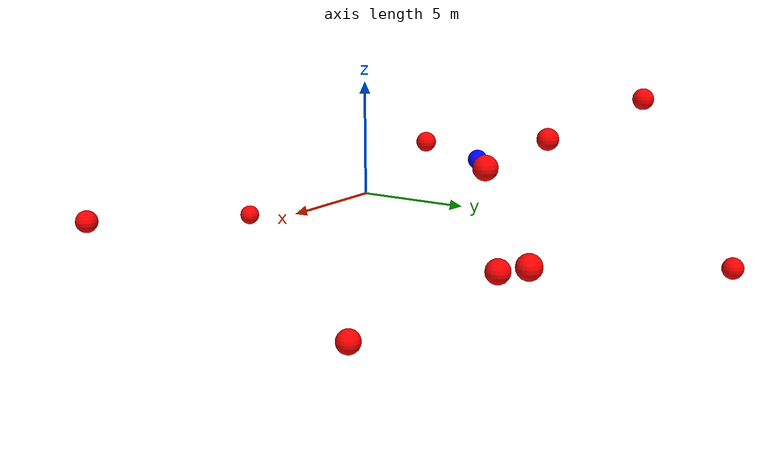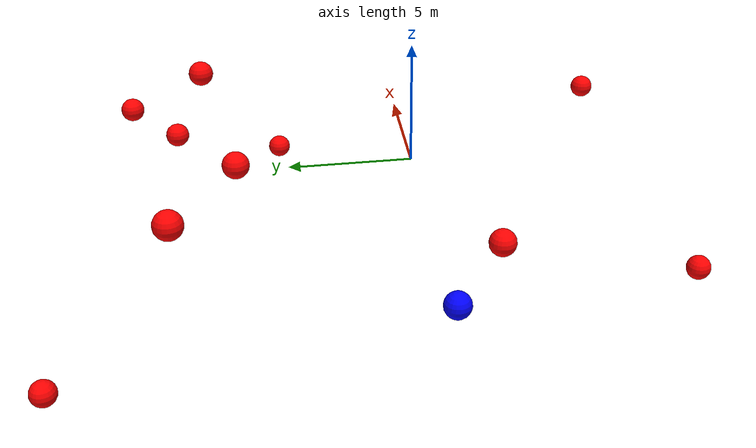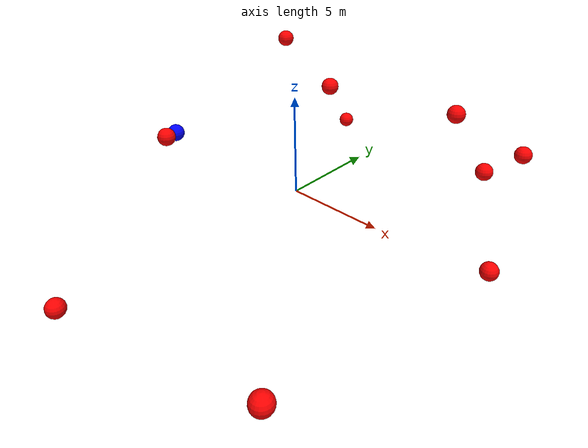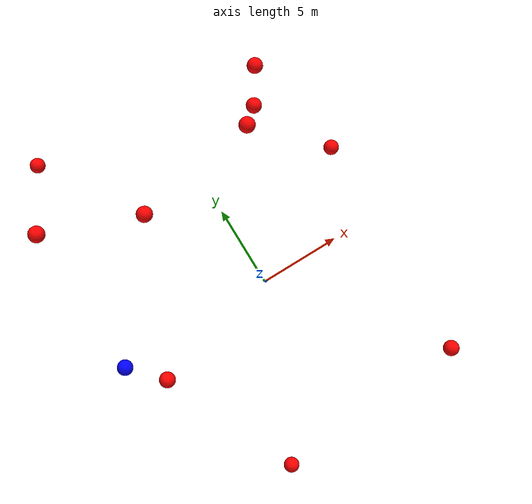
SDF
<?xml version="1.0" ?>
<sdf version="1.8">
    <world name="3d_world">
        <physics name="1ms" type="ode">
            <max_step_size>0.001</max_step_size>
            <real_time_factor>1.0</real_time_factor>
            <real_time_update_rate>1000.0</real_time_update_rate>
        </physics>
        <gravity>0 0 0</gravity>

        <plugin
            filename="gz-sim-physics-system"
            name="gz::sim::v8::systems::Physics">
        </plugin>
        <plugin
            filename="libignition-gazebo-user-commands-system.so"
            name="ignition::gazebo::systems::UserCommands">
        </plugin>
        <plugin
            filename="gz-sim-scene-broadcaster-system"
            name="gz::sim::systems::SceneBroadcaster">
        </plugin>
        <plugin
            filename="gz-sim-sensors-system"
            name="gz::sim::systems::Sensors">
            <render_engine>ogre2</render_engine>
        </plugin>

        <light type="directional" name="sun">
            <cast_shadows>true</cast_shadows>
            <pose>0 0 10 0 0 0</pose>
            <diffuse>0.8 0.8 0.8 1</diffuse>
            <specular>0.2 0.2 0.2 1</specular>
            <attenuation>
                <range>1000</range>
                <constant>0.9</constant>
                <linear>0.01</linear>
                <quadratic>0.001</quadratic>
            </attenuation>
            <direction>-0.5 0.1 -0.9</direction>
        </light>

        <!-- AGENTE -->
        <model name='agente' canonical_link='chassis'>
            <pose relative_to='world'>-10.0 0 0.0 0 0 0</pose>
            <link name='chassis'>
                <pose relative_to='__model__'>0.0 0 0.0 0 0 0</pose>
                <inertial>
                    <mass>1.14395</mass>
                    <inertia>
                        <ixx>0.095329</ixx>
                        <ixy>0</ixy>
                        <ixz>0</ixz>
                        <iyy>0.381317</iyy>
                        <iyz>0</iyz>
                        <izz>0.476646</izz>
                    </inertia>
                </inertial>
                <visual name='visual'>
                    <geometry>
                        <sphere>
                            <radius>0.5</radius>
                        </sphere>
                    </geometry>
                    <material>
                        <ambient>0.0 0.0 1.0 1</ambient>
                        <diffuse>0.0 0.0 1.0 1</diffuse>
                        <specular>0.0 0.0 1.0 1</specular>
                    </material>
                </visual>
                <collision name='collision'>
                    <geometry>
                        <sphere>
                            <radius>0.5</radius>
                        </sphere>
                    </geometry>
                </collision>
                <enable_gravity>false</enable_gravity>
            </link>

            <link name='lidar_link'>
                <pose relative_to='chassis'>0.0 0 0.1 0 0 0</pose>
                <inertial>
                    <mass>0.1</mass>
                    <inertia>
                        <ixx>0.000166667</ixx>
                        <iyy>0.000166667</iyy>
                        <izz>0.000166667</izz>
                    </inertia>
                </inertial>
                <collision name='collision'>
                    <geometry>
                        <cylinder>
                            <radius>0.05</radius>
                            <length>0.1</length>
                        </cylinder>
                    </geometry>
                </collision>
                <visual name='visual'>
                    <geometry>
                        <cylinder>
                            <radius>0.05</radius>
                            <length>0.1</length>
                        </cylinder>
                    </geometry>
                    <material>
                        <ambient>0.0 1.0 0.0 1</ambient>
                        <diffuse>0.0 1.0 0.0 1</diffuse>
                        <specular>0.0 1.0 0.0 1</specular>
                    </material>
                </visual>
                <sensor name="lidar" type="gpu_lidar">
                    <topic>scan</topic>
                    <update_rate>10</update_rate>
                    <lidar>
                        <scan>
                            <horizontal>
                                <samples>5000</samples>
                                <resolution>1</resolution>
                                <min_angle>-3.14159</min_angle>
                                <max_angle>3.14159</max_angle>
                            </horizontal>
                        </scan>
                        <range>
                            <min>0.1</min>
                            <max>10.0</max>
                            <resolution>0.01</resolution>
                        </range>
                    </lidar>
                    <visualize>true</visualize>
                    <always_on>true</always_on>
                    <update_rate>10</update_rate>
                    <pose_frame>lidar</pose_frame>
                </sensor>
                <enable_gravity>false</enable_gravity>
            </link>

            <joint name="lidar_joint" type="fixed">
                <parent>chassis</parent>
                <child>lidar_link</child>
            </joint>

            <plugin
                filename="ignition-gazebo-joint-state-publisher-system"
                name="ignition::gazebo::systems::JointStatePublisher">
            </plugin>
            <plugin
                filename="ignition-gazebo-odometry-publisher-system"
                name="ignition::gazebo::systems::OdometryPublisher">
                <dimensions>3</dimensions>
            </plugin>
            <plugin
                filename="ignition-gazebo-velocity-control-system"
                name="ignition::gazebo::systems::VelocityControl">
                <initial_linear>0.0 0 0</initial_linear>
                <initial_angular>0 0 0.0</initial_angular>
            </plugin>
            <plugin
                filename="libignition-gazebo-pose-publisher-system.so"
                name="ignition::gazebo::systems::PosePublisher">
                <topic>/agente/pose</topic>
                <frame_id>agente</frame_id>
                <update_rate>30</update_rate>
            </plugin>
        </model>

        <!-- OBSTACLE 1 -->
        <model name='obstacle_1' canonical_link='obstacle'>
            <static>false</static>
            <pose relative_to='world'>6.45 11.61 -0.14 0 0 0</pose>
            <link name='obstacle'>
                <pose relative_to='__model__'>0.0 0 0.0 0 0 0</pose>
                <visual name='visual'>
                    <geometry>
                        <sphere>
                            <radius>0.50</radius>
                        </sphere>
                    </geometry>
                    <material>
                        <ambient>1.0 0.0 0.0 1</ambient>
                        <diffuse>1.0 0.0 0.0 1</diffuse>
                        <specular>1.0 0.0 0.0 1</specular>
                    </material>
                </visual>
                <collision name='collision'>
                    <geometry>
                        <sphere>
                            <radius>0.50</radius>
                        </sphere>
                    </geometry>
                </collision>
                <enable_gravity>false</enable_gravity>
            </link>

            <plugin
                filename="ignition-gazebo-velocity-control-system"
                name="ignition::gazebo::systems::VelocityControl">
                <initial_linear>-1.21 -1.59 0.02</initial_linear>
                <initial_angular>0 0 0</initial_angular>
            </plugin>

            <plugin
                filename="ignition-gazebo-odometry-publisher-system"
                name="ignition::gazebo::systems::OdometryPublisher">
                <dimensions>3</dimensions>
            </plugin>
        </model>

        <!-- OBSTACLE 2 -->
        <model name='obstacle_2' canonical_link='obstacle'>
            <static>false</static>
            <pose relative_to='world'>7.71 -9.61 -1.03 0 0 0</pose>
            <link name='obstacle'>
                <pose relative_to='__model__'>0.0 0 0.0 0 0 0</pose>
                <visual name='visual'>
                    <geometry>
                        <sphere>
                            <radius>0.50</radius>
                        </sphere>
                    </geometry>
                    <material>
                        <ambient>1.0 0.0 0.0 1</ambient>
                        <diffuse>1.0 0.0 0.0 1</diffuse>
                        <specular>1.0 0.0 0.0 1</specular>
                    </material>
                </visual>
                <collision name='collision'>
                    <geometry>
                        <sphere>
                            <radius>0.50</radius>
                        </sphere>
                    </geometry>
                </collision>
                <enable_gravity>false</enable_gravity>
            </link>

            <plugin
                filename="ignition-gazebo-velocity-control-system"
                name="ignition::gazebo::systems::VelocityControl">
                <initial_linear>-0.14 1.43 0.15</initial_linear>
                <initial_angular>0 0 0</initial_angular>
            </plugin>

            <plugin
                filename="ignition-gazebo-odometry-publisher-system"
                name="ignition::gazebo::systems::OdometryPublisher">
                <dimensions>3</dimensions>
            </plugin>
        </model>

        <!-- OBSTACLE 3 -->
        <model name='obstacle_3' canonical_link='obstacle'>
            <static>false</static>
            <pose relative_to='world'>3.82 8.31 2.63 0 0 0</pose>
            <link name='obstacle'>
                <pose relative_to='__model__'>0.0 0 0.0 0 0 0</pose>
                <visual name='visual'>
                    <geometry>
                        <sphere>
                            <radius>0.50</radius>
                        </sphere>
                    </geometry>
                    <material>
                        <ambient>1.0 0.0 0.0 1</ambient>
                        <diffuse>1.0 0.0 0.0 1</diffuse>
                        <specular>1.0 0.0 0.0 1</specular>
                    </material>
                </visual>
                <collision name='collision'>
                    <geometry>
                        <sphere>
                            <radius>0.50</radius>
                        </sphere>
                    </geometry>
                </collision>
                <enable_gravity>false</enable_gravity>
            </link>

            <plugin
                filename="ignition-gazebo-velocity-control-system"
                name="ignition::gazebo::systems::VelocityControl">
                <initial_linear>-0.49 -1.80 -0.57</initial_linear>
                <initial_angular>0 0 0</initial_angular>
            </plugin>

            <plugin
                filename="ignition-gazebo-odometry-publisher-system"
                name="ignition::gazebo::systems::OdometryPublisher">
                <dimensions>3</dimensions>
            </plugin>
        </model>

        <!-- OBSTACLE 4 -->
        <model name='obstacle_4' canonical_link='obstacle'>
            <static>false</static>
            <pose relative_to='world'>5.20 9.68 -0.90 0 0 0</pose>
            <link name='obstacle'>
                <pose relative_to='__model__'>0.0 0 0.0 0 0 0</pose>
                <visual name='visual'>
                    <geometry>
                        <sphere>
                            <radius>0.50</radius>
                        </sphere>
                    </geometry>
                    <material>
                        <ambient>1.0 0.0 0.0 1</ambient>
                        <diffuse>1.0 0.0 0.0 1</diffuse>
                        <specular>1.0 0.0 0.0 1</specular>
                    </material>
                </visual>
                <collision name='collision'>
                    <geometry>
                        <sphere>
                            <radius>0.50</radius>
                        </sphere>
                    </geometry>
                </collision>
                <enable_gravity>false</enable_gravity>
            </link>

            <plugin
                filename="ignition-gazebo-velocity-control-system"
                name="ignition::gazebo::systems::VelocityControl">
                <initial_linear>-0.85 -1.80 0.17</initial_linear>
                <initial_angular>0 0 0</initial_angular>
            </plugin>

            <plugin
                filename="ignition-gazebo-odometry-publisher-system"
                name="ignition::gazebo::systems::OdometryPublisher">
                <dimensions>3</dimensions>
            </plugin>
        </model>

        <!-- OBSTACLE 5 -->
        <model name='obstacle_5' canonical_link='obstacle'>
            <static>false</static>
            <pose relative_to='world'>-8.54 14.15 -3.34 0 0 0</pose>
            <link name='obstacle'>
                <pose relative_to='__model__'>0.0 0 0.0 0 0 0</pose>
                <visual name='visual'>
                    <geometry>
                        <sphere>
                            <radius>0.50</radius>
                        </sphere>
                    </geometry>
                    <material>
                        <ambient>1.0 0.0 0.0 1</ambient>
                        <diffuse>1.0 0.0 0.0 1</diffuse>
                        <specular>1.0 0.0 0.0 1</specular>
                    </material>
                </visual>
                <collision name='collision'>
                    <geometry>
                        <sphere>
                            <radius>0.50</radius>
                        </sphere>
                    </geometry>
                </collision>
                <enable_gravity>false</enable_gravity>
            </link>

            <plugin
                filename="ignition-gazebo-velocity-control-system"
                name="ignition::gazebo::systems::VelocityControl">
                <initial_linear>0.52 -1.88 0.44</initial_linear>
                <initial_angular>0 0 0</initial_angular>
            </plugin>

            <plugin
                filename="ignition-gazebo-odometry-publisher-system"
                name="ignition::gazebo::systems::OdometryPublisher">
                <dimensions>3</dimensions>
            </plugin>
        </model>

        <!-- OBSTACLE 6 -->
        <model name='obstacle_6' canonical_link='obstacle'>
            <static>false</static>
            <pose relative_to='world'>-3.98 7.02 2.53 0 0 0</pose>
            <link name='obstacle'>
                <pose relative_to='__model__'>0.0 0 0.0 0 0 0</pose>
                <visual name='visual'>
                    <geometry>
                        <sphere>
                            <radius>0.50</radius>
                        </sphere>
                    </geometry>
                    <material>
                        <ambient>1.0 0.0 0.0 1</ambient>
                        <diffuse>1.0 0.0 0.0 1</diffuse>
                        <specular>1.0 0.0 0.0 1</specular>
                    </material>
                </visual>
                <collision name='collision'>
                    <geometry>
                        <sphere>
                            <radius>0.50</radius>
                        </sphere>
                    </geometry>
                </collision>
                <enable_gravity>false</enable_gravity>
            </link>

            <plugin
                filename="ignition-gazebo-velocity-control-system"
                name="ignition::gazebo::systems::VelocityControl">
                <initial_linear>0.33 -1.86 -0.67</initial_linear>
                <initial_angular>0 0 0</initial_angular>
            </plugin>

            <plugin
                filename="ignition-gazebo-odometry-publisher-system"
                name="ignition::gazebo::systems::OdometryPublisher">
                <dimensions>3</dimensions>
            </plugin>
        </model>

        <!-- OBSTACLE 7 -->
        <model name='obstacle_7' canonical_link='obstacle'>
            <static>false</static>
            <pose relative_to='world'>-4.66 -11.03 -3.32 0 0 0</pose>
            <link name='obstacle'>
                <pose relative_to='__model__'>0.0 0 0.0 0 0 0</pose>
                <visual name='visual'>
                    <geometry>
                        <sphere>
                            <radius>0.50</radius>
                        </sphere>
                    </geometry>
                    <material>
                        <ambient>1.0 0.0 0.0 1</ambient>
                        <diffuse>1.0 0.0 0.0 1</diffuse>
                        <specular>1.0 0.0 0.0 1</specular>
                    </material>
                </visual>
                <collision name='collision'>
                    <geometry>
                        <sphere>
                            <radius>0.50</radius>
                        </sphere>
                    </geometry>
                </collision>
                <enable_gravity>false</enable_gravity>
            </link>

            <plugin
                filename="ignition-gazebo-velocity-control-system"
                name="ignition::gazebo::systems::VelocityControl">
                <initial_linear>1.01 1.65 0.50</initial_linear>
                <initial_angular>0 0 0</initial_angular>
            </plugin>

            <plugin
                filename="ignition-gazebo-odometry-publisher-system"
                name="ignition::gazebo::systems::OdometryPublisher">
                <dimensions>3</dimensions>
            </plugin>
        </model>

        <!-- OBSTACLE 8 -->
        <model name='obstacle_8' canonical_link='obstacle'>
            <static>false</static>
            <pose relative_to='world'>-8.06 -1.93 1.03 0 0 0</pose>
            <link name='obstacle'>
                <pose relative_to='__model__'>0.0 0 0.0 0 0 0</pose>
                <visual name='visual'>
                    <geometry>
                        <sphere>
                            <radius>0.50</radius>
                        </sphere>
                    </geometry>
                    <material>
                        <ambient>1.0 0.0 0.0 1</ambient>
                        <diffuse>1.0 0.0 0.0 1</diffuse>
                        <specular>1.0 0.0 0.0 1</specular>
                    </material>
                </visual>
                <collision name='collision'>
                    <geometry>
                        <sphere>
                            <radius>0.50</radius>
                        </sphere>
                    </geometry>
                </collision>
                <enable_gravity>false</enable_gravity>
            </link>

            <plugin
                filename="ignition-gazebo-velocity-control-system"
                name="ignition::gazebo::systems::VelocityControl">
                <initial_linear>1.93 0.46 -0.25</initial_linear>
                <initial_angular>0 0 0</initial_angular>
            </plugin>

            <plugin
                filename="ignition-gazebo-odometry-publisher-system"
                name="ignition::gazebo::systems::OdometryPublisher">
                <dimensions>3</dimensions>
            </plugin>
        </model>

        <!-- OBSTACLE 9 -->
        <model name='obstacle_9' canonical_link='obstacle'>
            <static>false</static>
            <pose relative_to='world'>-9.70 9.08 3.83 0 0 0</pose>
            <link name='obstacle'>
                <pose relative_to='__model__'>0.0 0 0.0 0 0 0</pose>
                <visual name='visual'>
                    <geometry>
                        <sphere>
                            <radius>0.50</radius>
                        </sphere>
                    </geometry>
                    <material>
                        <ambient>1.0 0.0 0.0 1</ambient>
                        <diffuse>1.0 0.0 0.0 1</diffuse>
                        <specular>1.0 0.0 0.0 1</specular>
                    </material>
                </visual>
                <collision name='collision'>
                    <geometry>
                        <sphere>
                            <radius>0.50</radius>
                        </sphere>
                    </geometry>
                </collision>
                <enable_gravity>false</enable_gravity>
            </link>

            <plugin
                filename="ignition-gazebo-velocity-control-system"
                name="ignition::gazebo::systems::VelocityControl">
                <initial_linear>1.73 -0.93 -0.39</initial_linear>
                <initial_angular>0 0 0</initial_angular>
            </plugin>

            <plugin
                filename="ignition-gazebo-odometry-publisher-system"
                name="ignition::gazebo::systems::OdometryPublisher">
                <dimensions>3</dimensions>
            </plugin>
        </model>

        <!-- OBSTACLE 10 -->
        <model name='obstacle_10' canonical_link='obstacle'>
            <static>false</static>
            <pose relative_to='world'>8.40 5.15 -3.55 0 0 0</pose>
            <link name='obstacle'>
                <pose relative_to='__model__'>0.0 0 0.0 0 0 0</pose>
                <visual name='visual'>
                    <geometry>
                        <sphere>
                            <radius>0.50</radius>
                        </sphere>
                    </geometry>
                    <material>
                        <ambient>1.0 0.0 0.0 1</ambient>
                        <diffuse>1.0 0.0 0.0 1</diffuse>
                        <specular>1.0 0.0 0.0 1</specular>
                    </material>
                </visual>
                <collision name='collision'>
                    <geometry>
                        <sphere>
                            <radius>0.50</radius>
                        </sphere>
                    </geometry>
                </collision>
                <enable_gravity>false</enable_gravity>
            </link>

            <plugin
                filename="ignition-gazebo-velocity-control-system"
                name="ignition::gazebo::systems::VelocityControl">
                <initial_linear>-1.52 -1.07 0.74</initial_linear>
                <initial_angular>0 0 0</initial_angular>
            </plugin>

            <plugin
                filename="ignition-gazebo-odometry-publisher-system"
                name="ignition::gazebo::systems::OdometryPublisher">
                <dimensions>3</dimensions>
            </plugin>
        </model>

    </world>
</sdf>
